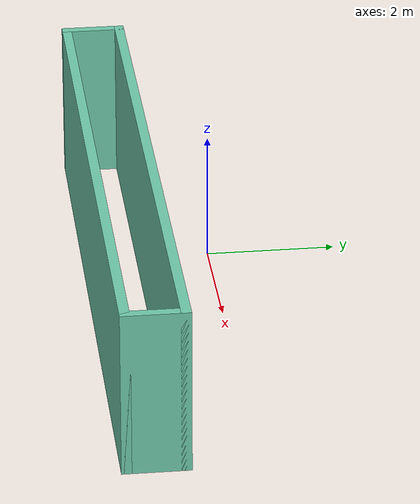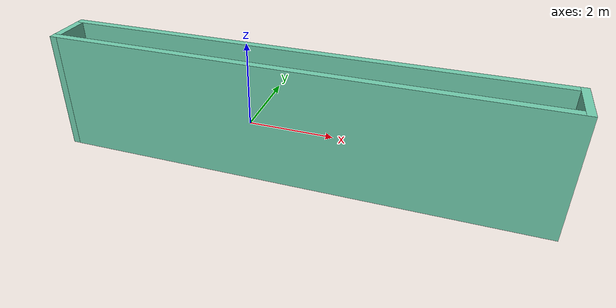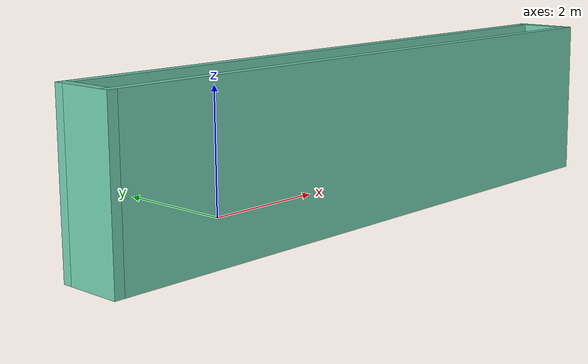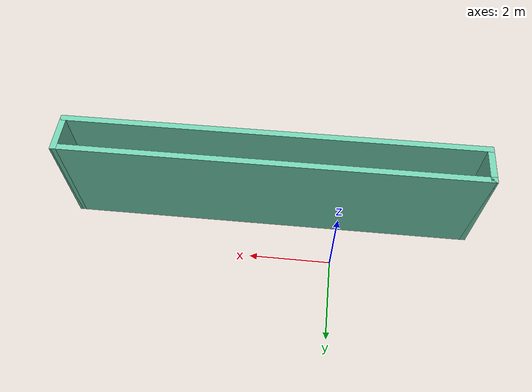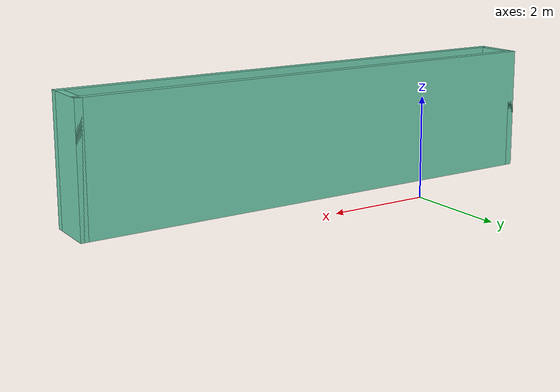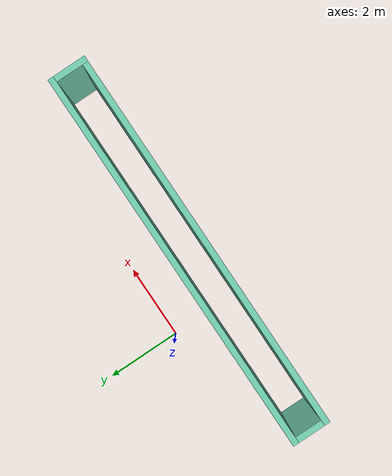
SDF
<?xml version='1.0'?>
<sdf version='1.7'>
  <model name='carril_basico_v2'>
    <pose>1.595 -0.9925 0 0 -0 0</pose>
    <link name='Wall_1'>
      <collision name='Wall_1_Collision'>
        <geometry>
          <box>
            <size>10 0.15 2.5</size>
          </box>
        </geometry>
        <pose>0 0 1.25 0 -0 0</pose>
      </collision>
      <visual name='Wall_1_Visual'>
        <pose>0 0 1.25 0 -0 0</pose>
        <geometry>
          <box>
            <size>10 0.15 2.5</size>
          </box>
        </geometry>
        <material>
          <script>
            <uri>file://media/materials/scripts/gazebo.material</uri>
            <name>Gazebo/Grey</name>
          </script>
          <ambient>0.435294 0.796078 0.67451 1</ambient>
        </material>
        <meta>
          <layer>0</layer>
        </meta>
      </visual>
      <pose>-0 -0.0675 0 0 -0 0</pose>
    </link>
    <link name='Wall_2'>
      <collision name='Wall_2_Collision'>
        <geometry>
          <box>
            <size>1 0.15 2.5</size>
          </box>
        </geometry>
        <pose>0 0 1.25 0 -0 0</pose>
      </collision>
      <visual name='Wall_2_Visual'>
        <pose>0 0 1.25 0 -0 0</pose>
        <geometry>
          <box>
            <size>1 0.15 2.5</size>
          </box>
        </geometry>
        <material>
          <script>
            <uri>file://media/materials/scripts/gazebo.material</uri>
            <name>Gazebo/Grey</name>
          </script>
          <ambient>0.435294 0.796078 0.67451 1</ambient>
        </material>
        <meta>
          <layer>0</layer>
        </meta>
      </visual>
      <pose>4.925 -0.4925 0 0 -0 -1.5708</pose>
    </link>
    <link name='Wall_3'>
      <collision name='Wall_3_Collision'>
        <geometry>
          <box>
            <size>10 0.15 2.5</size>
          </box>
        </geometry>
        <pose>0 0 1.25 0 -0 0</pose>
      </collision>
      <visual name='Wall_3_Visual'>
        <pose>0 0 1.25 0 -0 0</pose>
        <geometry>
          <box>
            <size>10 0.15 2.5</size>
          </box>
        </geometry>
        <material>
          <script>
            <uri>file://media/materials/scripts/gazebo.material</uri>
            <name>Gazebo/Grey</name>
          </script>
          <ambient>0.435294 0.796078 0.67451 1</ambient>
        </material>
        <meta>
          <layer>0</layer>
        </meta>
      </visual>
      <pose>-0 -0.9175 0 0 -0 3.14159</pose>
    </link>
    <link name='Wall_5'>
      <collision name='Wall_5_Collision'>
        <geometry>
          <box>
            <size>1 0.15 2.5</size>
          </box>
        </geometry>
        <pose>0 0 1.25 0 -0 0</pose>
      </collision>
      <visual name='Wall_5_Visual'>
        <pose>0 0 1.25 0 -0 0</pose>
        <geometry>
          <box>
            <size>1 0.15 2.5</size>
          </box>
        </geometry>
        <material>
          <script>
            <uri>file://media/materials/scripts/gazebo.material</uri>
            <name>Gazebo/Grey</name>
          </script>
          <ambient>0.435294 0.796078 0.67451 1</ambient>
        </material>
        <meta>
          <layer>0</layer>
        </meta>
      </visual>
      <pose>-4.925 -0.4925 0 0 -0 -1.5708</pose>
    </link>
    <static>1</static>
  </model>
</sdf>
